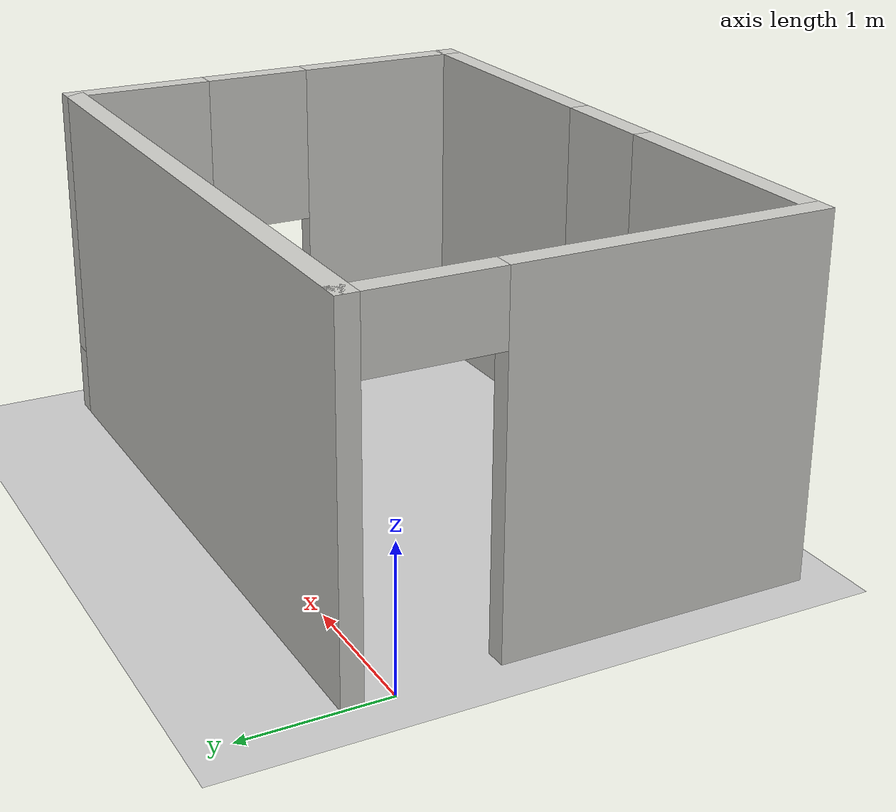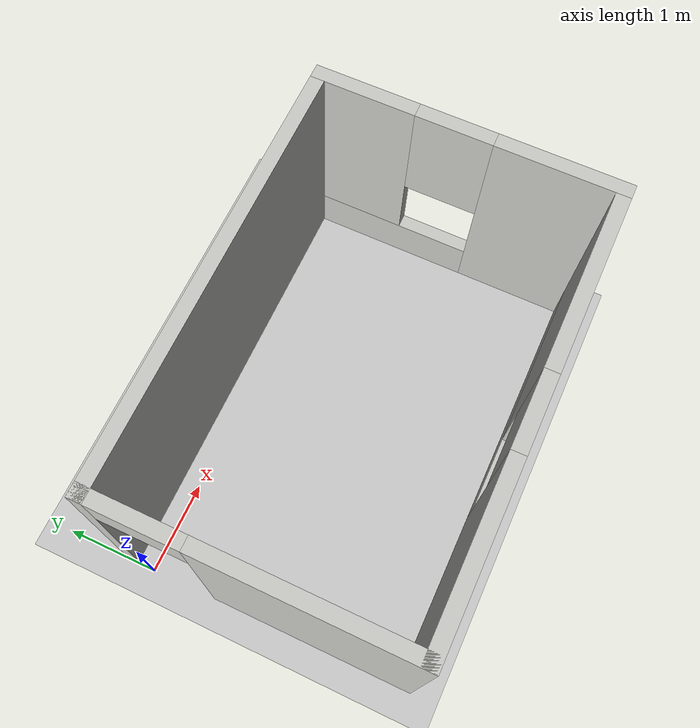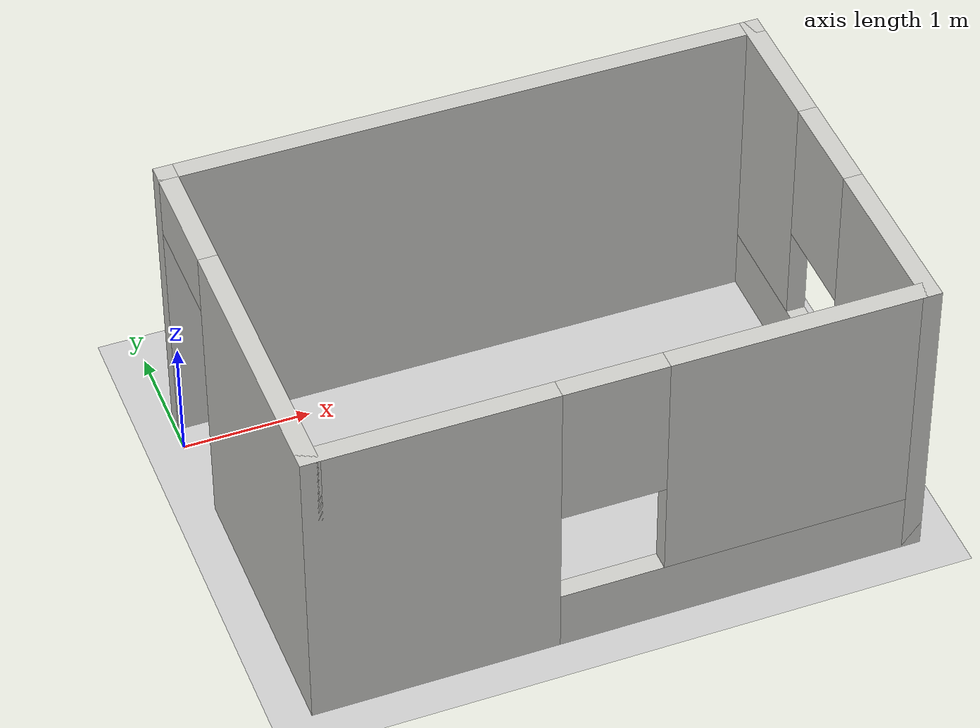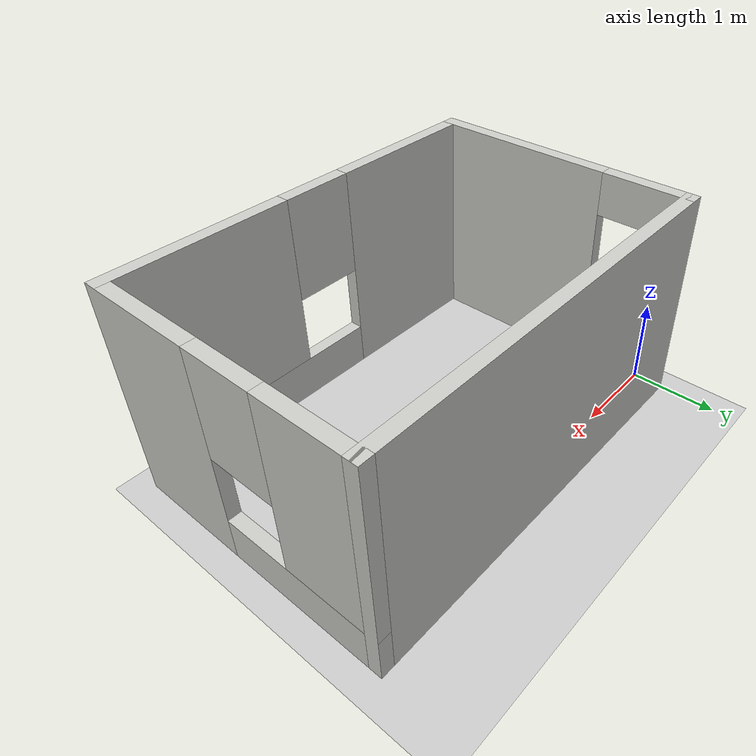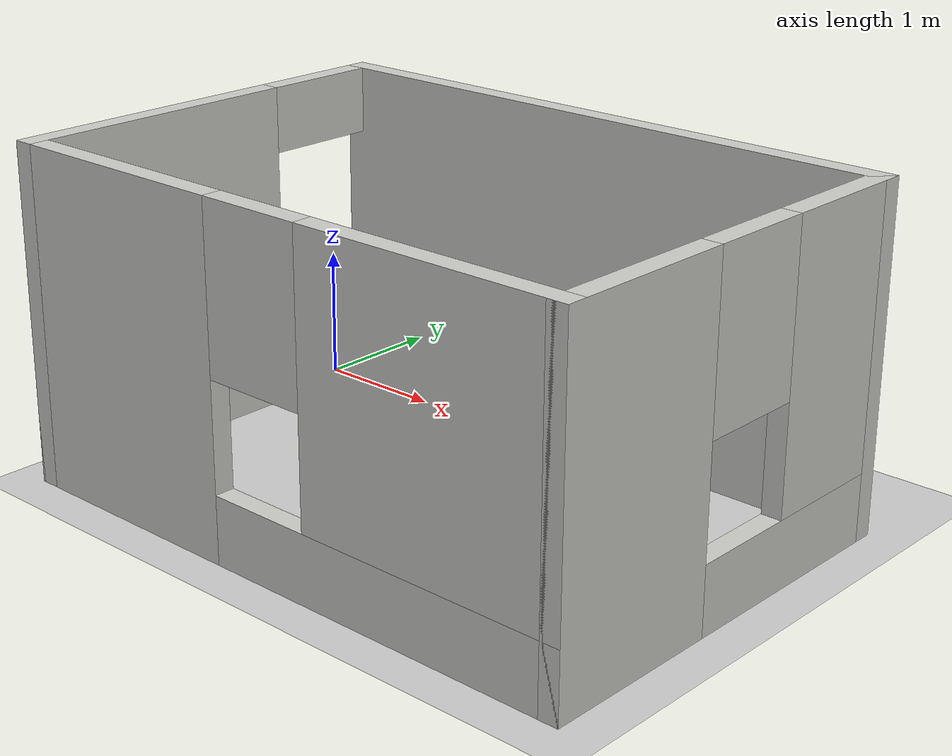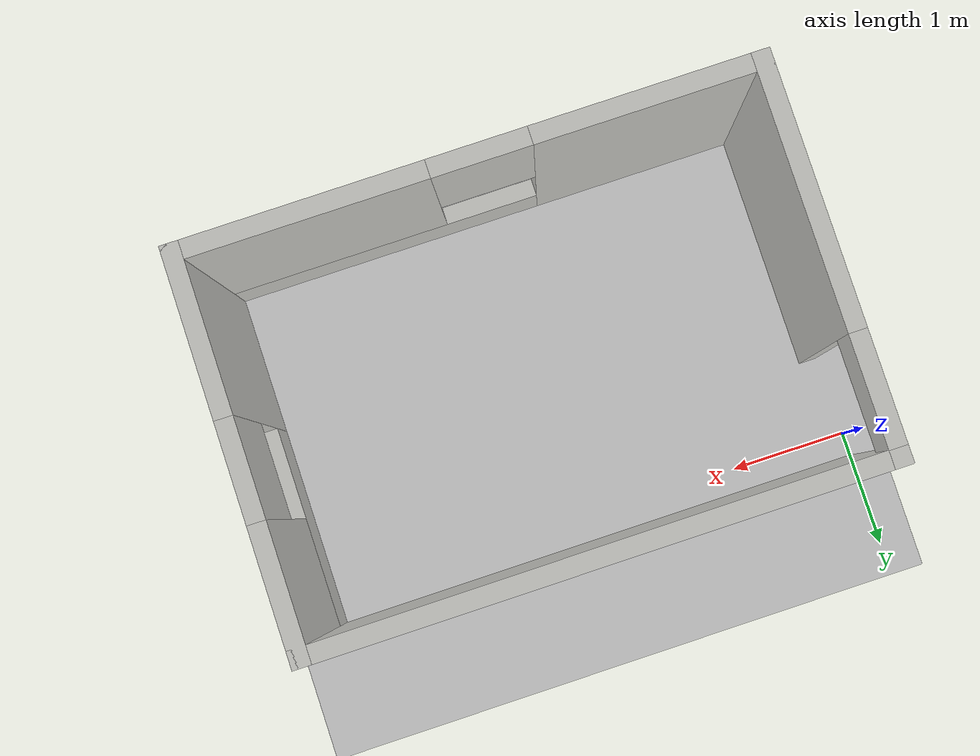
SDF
<sdf version="1.7">
 <world name="default">
  <light name="sun" type="directional">
   <pose>0 0 10 0 -0 0</pose>
   <diffuse>0.8 0.8 0.8 1</diffuse>
   <specular>0.2 0.2 0.2 1</specular>
   <attenuation>
    <range>1000</range>
    <constant>0.9</constant>
    <linear>0.01</linear>
    <quadratic>0.001</quadratic>
   </attenuation>
   <direction>-0.5 0.1 -0.9</direction>
   <spot><inner_angle>0</inner_angle><outer_angle>0</outer_angle><falloff>0</falloff></spot>
  </light>
  <model name="ground_plane">
   <static>1</static>
   <link name="link">
    <collision name="collision">
     <geometry><plane><normal>0 0 1</normal><size>100 100</size></plane></geometry>
     <surface>
      <contact><collide_bitmask>65535</collide_bitmask></contact>
      <friction><ode><mu>100</mu><mu2>50</mu2></ode></friction>
     </surface>
    </collision>
    <visual name="visual">
     <cast_shadows>0</cast_shadows>
     <geometry><plane><normal>0 0 1</normal><size>100 100</size></plane></geometry>
     <material>
      <script><uri>file://media/materials/scripts/gazebo.material</uri><name>Gazebo/Grey</name></script>
     </material>
    </visual>
   </link>
  </model>
  <gravity>0 0 -9.8</gravity>
  <magnetic_field>6e-06 2.3e-05 -4.2e-05</magnetic_field>
  <atmosphere type="adiabatic"/>
  <physics type="ode">
   <max_step_size>0.001</max_step_size>
   <real_time_factor>1</real_time_factor>
   <real_time_update_rate>1000</real_time_update_rate>
  </physics>
  <scene><ambient>0.4 0.4 0.4 1</ambient><background>0.7 0.7 0.7 1</background><shadows>1</shadows></scene>
  <spherical_coordinates>
   <surface_model>EARTH_WGS84</surface_model>
   <latitude_deg>0</latitude_deg>
   <longitude_deg>0</longitude_deg>
   <elevation>0</elevation>
   <heading_deg>0</heading_deg>
  </spherical_coordinates>
  <model name="room">
   <pose>2.38584 -1.2782 0 0 -0 0</pose>
   <link name="Wall_13">
    <pose>-0 -1.55 0 0 -0 0</pose>
    <visual name="Wall_13_Visual_0">
     <pose>-1.4275 0 1.25 0 -0 0</pose>
     <geometry><box><size>1.895 0.15 2.5</size></box></geometry>
     <material>
      <script><uri>file://media/materials/scripts/gazebo.material</uri><name>Gazebo/CeilingTiled</name></script>
      <ambient>0.988235 0.913725 0.309804 1</ambient>
     </material>
     <meta><layer>0</layer></meta>
    </visual>
    <collision name="Wall_13_Collision_0">
     <geometry><box><size>1.895 0.15 2.5</size></box></geometry>
     <pose>-1.4275 0 1.25 0 -0 0</pose>
    </collision>
    <visual name="Wall_13_Visual_1">
     <pose>0.9475 0 0.25 0 -0 0</pose>
     <geometry><box><size>2.855 0.15 0.5</size></box></geometry>
     <material>
      <script><uri>file://media/materials/scripts/gazebo.material</uri><name>Gazebo/CeilingTiled</name></script>
      <ambient>0.988235 0.913725 0.309804 1</ambient>
     </material>
     <meta><layer>0</layer></meta>
    </visual>
    <collision name="Wall_13_Collision_1">
     <geometry><box><size>2.855 0.15 0.5</size></box></geometry>
     <pose>0.9475 0 0.25 0 -0 0</pose>
    </collision>
    <visual name="Wall_13_Visual_2">
     <pose>1.3475 0 1.5 0 -0 0</pose>
     <geometry><box><size>2.055 0.15 2</size></box></geometry>
     <material>
      <script><uri>file://media/materials/scripts/gazebo.material</uri><name>Gazebo/CeilingTiled</name></script>
      <ambient>0.988235 0.913725 0.309804 1</ambient>
     </material>
     <meta><layer>0</layer></meta>
    </visual>
    <collision name="Wall_13_Collision_2">
     <geometry><box><size>2.055 0.15 2</size></box></geometry>
     <pose>1.3475 0 1.5 0 -0 0</pose>
    </collision>
    <visual name="Wall_13_Visual_3">
     <pose>-0.08 0 1.9 0 -0 0</pose>
     <geometry><box><size>0.8 0.15 1.2</size></box></geometry>
     <material>
      <script><uri>file://media/materials/scripts/gazebo.material</uri><name>Gazebo/CeilingTiled</name></script>
      <ambient>0.988235 0.913725 0.309804 1</ambient>
     </material>
     <meta><layer>0</layer></meta>
    </visual>
    <collision name="Wall_13_Collision_3">
     <geometry><box><size>0.8 0.15 1.2</size></box></geometry>
     <pose>-0.08 0 1.9 0 -0 0</pose>
    </collision>
   </link>
   <link name="Wall_14">
    <pose>2.3 0 0 0 -0 1.5708</pose>
    <visual name="Wall_14_Visual_0">
     <pose>-0.9475 0 1.25 0 -0 0</pose>
     <geometry><box><size>1.355 0.15 2.5</size></box></geometry>
     <material>
      <script><uri>file://media/materials/scripts/gazebo.material</uri><name>Gazebo/CeilingTiled</name></script>
      <ambient>0.988235 0.913725 0.309804 1</ambient>
     </material>
     <meta><layer>0</layer></meta>
    </visual>
    <collision name="Wall_14_Collision_0">
     <geometry><box><size>1.355 0.15 2.5</size></box></geometry>
     <pose>-0.9475 0 1.25 0 -0 0</pose>
    </collision>
    <visual name="Wall_14_Visual_1">
     <pose>0.6775 0 0.25 0 -0 0</pose>
     <geometry><box><size>1.895 0.15 0.5</size></box></geometry>
     <material>
      <script><uri>file://media/materials/scripts/gazebo.material</uri><name>Gazebo/CeilingTiled</name></script>
      <ambient>0.988235 0.913725 0.309804 1</ambient>
     </material>
     <meta><layer>0</layer></meta>
    </visual>
    <collision name="Wall_14_Collision_1">
     <geometry><box><size>1.895 0.15 0.5</size></box></geometry>
     <pose>0.6775 0 0.25 0 -0 0</pose>
    </collision>
    <visual name="Wall_14_Visual_2">
     <pose>1.0775 0 1.5 0 -0 0</pose>
     <geometry><box><size>1.095 0.15 2</size></box></geometry>
     <material>
      <script><uri>file://media/materials/scripts/gazebo.material</uri><name>Gazebo/CeilingTiled</name></script>
      <ambient>0.988235 0.913725 0.309804 1</ambient>
     </material>
     <meta><layer>0</layer></meta>
    </visual>
    <collision name="Wall_14_Collision_2">
     <geometry><box><size>1.095 0.15 2</size></box></geometry>
     <pose>1.0775 0 1.5 0 -0 0</pose>
    </collision>
    <visual name="Wall_14_Visual_3">
     <pose>0.13 0 1.9 0 -0 0</pose>
     <geometry><box><size>0.8 0.15 1.2</size></box></geometry>
     <material>
      <script><uri>file://media/materials/scripts/gazebo.material</uri><name>Gazebo/CeilingTiled</name></script>
      <ambient>0.988235 0.913725 0.309804 1</ambient>
     </material>
     <meta><layer>0</layer></meta>
    </visual>
    <collision name="Wall_14_Collision_3">
     <geometry><box><size>0.8 0.15 1.2</size></box></geometry>
     <pose>0.13 0 1.9 0 -0 0</pose>
    </collision>
   </link>
   <link name="Wall_15">
    <collision name="Wall_15_Collision">
     <geometry><box><size>4.75 0.15 2.5</size></box></geometry>
     <pose>0 0 1.25 0 -0 0</pose>
    </collision>
    <visual name="Wall_15_Visual">
     <pose>0 0 1.25 0 -0 0</pose>
     <geometry><box><size>4.75 0.15 2.5</size></box></geometry>
     <material>
      <script><uri>file://media/materials/scripts/gazebo.material</uri><name>Gazebo/CeilingTiled</name></script>
      <ambient>0.988235 0.913725 0.309804 1</ambient>
     </material>
     <meta><layer>0</layer></meta>
    </visual>
    <pose>-0 1.55 0 0 -0 3.14159</pose>
   </link>
   <link name="Wall_16">
    <pose>-2.3 0 0 0 -0 -1.5708</pose>
    <visual name="Wall_16_Visual_0">
     <pose>-1.5525 0 1.25 0 -0 0</pose>
     <geometry><box><size>0.145 0.15 2.5</size></box></geometry>
     <material>
      <script><uri>file://media/materials/scripts/gazebo.material</uri><name>Gazebo/CeilingTiled</name></script>
      <ambient>0.988235 0.913725 0.309804 1</ambient>
     </material>
     <meta><layer>0</layer></meta>
    </visual>
    <collision name="Wall_16_Collision_0">
     <geometry><box><size>0.145 0.15 2.5</size></box></geometry>
     <pose>-1.5525 0 1.25 0 -0 0</pose>
    </collision>
    <visual name="Wall_16_Visual_1">
     <pose>0.5225 0 1.25 0 -0 0</pose>
     <geometry><box><size>2.205 0.15 2.5</size></box></geometry>
     <material>
      <script><uri>file://media/materials/scripts/gazebo.material</uri><name>Gazebo/CeilingTiled</name></script>
      <ambient>0.988235 0.913725 0.309804 1</ambient>
     </material>
     <meta><layer>0</layer></meta>
    </visual>
    <collision name="Wall_16_Collision_1">
     <geometry><box><size>2.205 0.15 2.5</size></box></geometry>
     <pose>0.5225 0 1.25 0 -0 0</pose>
    </collision>
    <visual name="Wall_16_Visual_2">
     <pose>-1.03 0 2.25 0 -0 0</pose>
     <geometry><box><size>0.9 0.15 0.5</size></box></geometry>
     <material>
      <script><uri>file://media/materials/scripts/gazebo.material</uri><name>Gazebo/CeilingTiled</name></script>
      <ambient>0.988235 0.913725 0.309804 1</ambient>
     </material>
     <meta><layer>0</layer></meta>
    </visual>
    <collision name="Wall_16_Collision_2">
     <geometry><box><size>0.9 0.15 0.5</size></box></geometry>
     <pose>-1.03 0 2.25 0 -0 0</pose>
    </collision>
   </link>
   <static>1</static>
  </model>
 </world>
</sdf>
